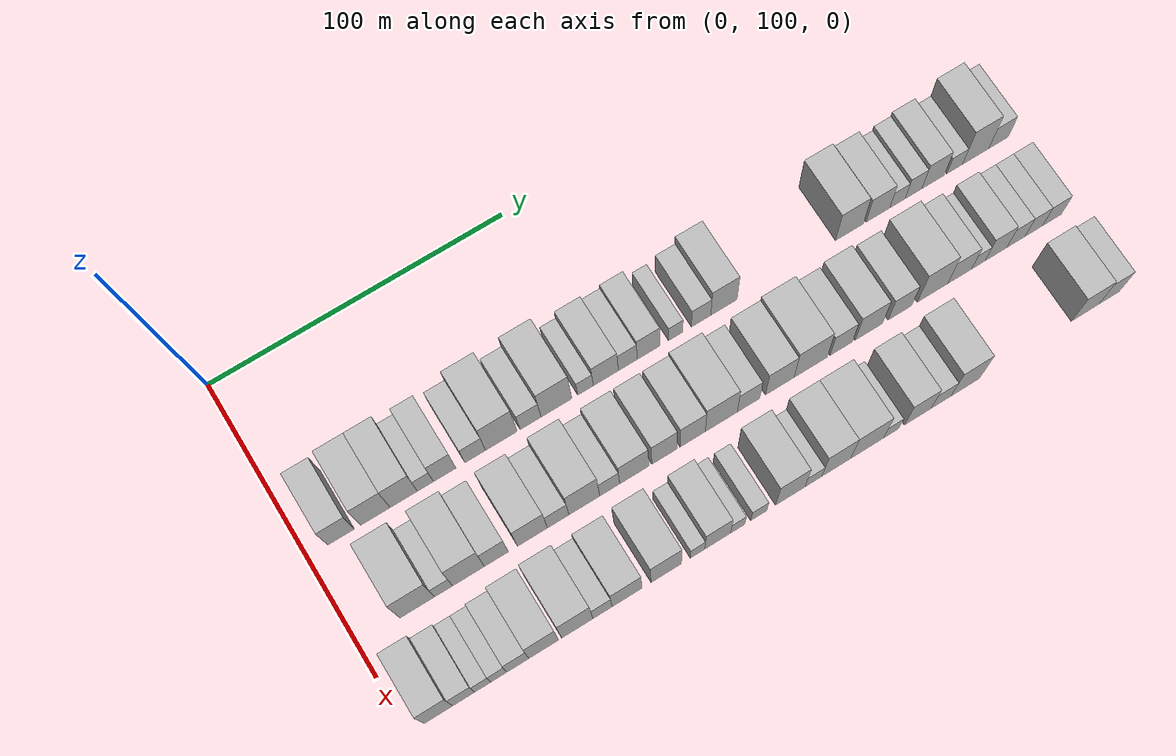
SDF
<sdf version="1.6">
 <world name="default">
  <model name="building_45">
   <static>1</static>
   <pose>50.0000 111.2178 0 0.000000 0.000000 0.000000</pose>
   <link name="link">
    <pose>0 0 9.00 0 0 0</pose>
    <collision name="collision"><geometry><box><size>20.0000 8.6720 18.0000</size></box></geometry></collision>
    <visual name="visual">
     <cast_shadows>0</cast_shadows>
     <geometry><box><size>20.0000 8.6720 18.0000</size></box></geometry>
     <material>
      <script>
       <uri>model://HANNAS_wall/materials/scripts</uri>
       <uri>model://HANNAS_wall/materials/textures</uri>
       <name>vrc/HANNAS_wall</name>
      </script>
     </material>
    </visual>
   </link>
  </model>
  <model name="building_46">
   <static>1</static>
   <pose>50.0000 122.4304 0 0.000000 0.000000 0.000000</pose>
   <link name="link">
    <pose>0 0 10.50 0 0 0</pose>
    <collision name="collision"><geometry><box><size>20.0000 9.7534 21.0000</size></box></geometry></collision>
    <visual name="visual">
     <cast_shadows>0</cast_shadows>
     <geometry><box><size>20.0000 9.7534 21.0000</size></box></geometry>
     <material>
      <script>
       <uri>model://HANNAS_wall/materials/scripts</uri>
       <uri>model://HANNAS_wall/materials/textures</uri>
       <name>vrc/HANNAS_wall</name>
      </script>
     </material>
    </visual>
   </link>
  </model>
  <model name="building_47">
   <static>1</static>
   <pose>50.0000 131.8109 0 0.000000 0.000000 0.000000</pose>
   <link name="link">
    <pose>0 0 10.50 0 0 0</pose>
    <collision name="collision"><geometry><box><size>20.0000 9.0077 21.0000</size></box></geometry></collision>
    <visual name="visual">
     <cast_shadows>0</cast_shadows>
     <geometry><box><size>20.0000 9.0077 21.0000</size></box></geometry>
     <material>
      <script>
       <uri>model://HANNAS_wall/materials/scripts</uri>
       <uri>model://HANNAS_wall/materials/textures</uri>
       <name>vrc/HANNAS_wall</name>
      </script>
     </material>
    </visual>
   </link>
  </model>
  <model name="building_48">
   <static>1</static>
   <pose>50.0000 138.9734 0 0.000000 0.000000 0.000000</pose>
   <link name="link">
    <pose>0 0 6.00 0 0 0</pose>
    <collision name="collision"><geometry><box><size>20.0000 5.3172 12.0000</size></box></geometry></collision>
    <visual name="visual">
     <cast_shadows>0</cast_shadows>
     <geometry><box><size>20.0000 5.3172 12.0000</size></box></geometry>
     <material>
      <script>
       <uri>model://HANNAS_wall/materials/scripts</uri>
       <uri>model://HANNAS_wall/materials/textures</uri>
       <name>vrc/HANNAS_wall</name>
      </script>
     </material>
    </visual>
   </link>
  </model>
  <model name="building_49">
   <static>1</static>
   <pose>50.0000 145.3596 0 0.000000 0.000000 0.000000</pose>
   <link name="link">
    <pose>0 0 9.00 0 0 0</pose>
    <collision name="collision"><geometry><box><size>20.0000 7.4552 18.0000</size></box></geometry></collision>
    <visual name="visual">
     <cast_shadows>0</cast_shadows>
     <geometry><box><size>20.0000 7.4552 18.0000</size></box></geometry>
     <material>
      <script>
       <uri>model://HANNAS_wall/materials/scripts</uri>
       <uri>model://HANNAS_wall/materials/textures</uri>
       <name>vrc/HANNAS_wall</name>
      </script>
     </material>
    </visual>
   </link>
  </model>
  <model name="building_50">
   <static>1</static>
   <pose>50.0000 155.5371 0 0.000000 0.000000 0.000000</pose>
   <link name="link">
    <pose>0 0 7.50 0 0 0</pose>
    <collision name="collision"><geometry><box><size>20.0000 6.8997 15.0000</size></box></geometry></collision>
    <visual name="visual">
     <cast_shadows>0</cast_shadows>
     <geometry><box><size>20.0000 6.8997 15.0000</size></box></geometry>
     <material>
      <script>
       <uri>model://HANNAS_wall/materials/scripts</uri>
       <uri>model://HANNAS_wall/materials/textures</uri>
       <name>vrc/HANNAS_wall</name>
      </script>
     </material>
    </visual>
   </link>
  </model>
  <model name="building_51">
   <static>1</static>
   <pose>50.0000 164.3028 0 0.000000 0.000000 0.000000</pose>
   <link name="link">
    <pose>0 0 12.00 0 0 0</pose>
    <collision name="collision"><geometry><box><size>20.0000 10.6318 24.0000</size></box></geometry></collision>
    <visual name="visual">
     <cast_shadows>0</cast_shadows>
     <geometry><box><size>20.0000 10.6318 24.0000</size></box></geometry>
     <material>
      <script>
       <uri>model://HANNAS_wall/materials/scripts</uri>
       <uri>model://HANNAS_wall/materials/textures</uri>
       <name>vrc/HANNAS_wall</name>
      </script>
     </material>
    </visual>
   </link>
  </model>
  <model name="building_52">
   <static>1</static>
   <pose>50.0000 174.1626 0 0.000000 0.000000 0.000000</pose>
   <link name="link">
    <pose>0 0 7.50 0 0 0</pose>
    <collision name="collision"><geometry><box><size>20.0000 7.0879 15.0000</size></box></geometry></collision>
    <visual name="visual">
     <cast_shadows>0</cast_shadows>
     <geometry><box><size>20.0000 7.0879 15.0000</size></box></geometry>
     <material>
      <script>
       <uri>model://HANNAS_wall/materials/scripts</uri>
       <uri>model://HANNAS_wall/materials/textures</uri>
       <name>vrc/HANNAS_wall</name>
      </script>
     </material>
    </visual>
   </link>
  </model>
  <model name="building_53">
   <static>1</static>
   <pose>50.0000 182.9408 0 0.000000 0.000000 0.000000</pose>
   <link name="link">
    <pose>0 0 12.00 0 0 0</pose>
    <collision name="collision"><geometry><box><size>20.0000 10.4686 24.0000</size></box></geometry></collision>
    <visual name="visual">
     <cast_shadows>0</cast_shadows>
     <geometry><box><size>20.0000 10.4686 24.0000</size></box></geometry>
     <material>
      <script>
       <uri>model://HANNAS_wall/materials/scripts</uri>
       <uri>model://HANNAS_wall/materials/textures</uri>
       <name>vrc/HANNAS_wall</name>
      </script>
     </material>
    </visual>
   </link>
  </model>
  <model name="building_54">
   <static>1</static>
   <pose>50.0000 192.8291 0 0.000000 0.000000 0.000000</pose>
   <link name="link">
    <pose>0 0 6.00 0 0 0</pose>
    <collision name="collision"><geometry><box><size>20.0000 5.3079 12.0000</size></box></geometry></collision>
    <visual name="visual">
     <cast_shadows>0</cast_shadows>
     <geometry><box><size>20.0000 5.3079 12.0000</size></box></geometry>
     <material>
      <script>
       <uri>model://HANNAS_wall/materials/scripts</uri>
       <uri>model://HANNAS_wall/materials/textures</uri>
       <name>vrc/HANNAS_wall</name>
      </script>
     </material>
    </visual>
   </link>
  </model>
  <model name="building_55">
   <static>1</static>
   <pose>50.0000 199.7881 0 0.000000 0.000000 0.000000</pose>
   <link name="link">
    <pose>0 0 9.00 0 0 0</pose>
    <collision name="collision"><geometry><box><size>20.0000 8.6101 18.0000</size></box></geometry></collision>
    <visual name="visual">
     <cast_shadows>0</cast_shadows>
     <geometry><box><size>20.0000 8.6101 18.0000</size></box></geometry>
     <material>
      <script>
       <uri>model://HANNAS_wall/materials/scripts</uri>
       <uri>model://HANNAS_wall/materials/textures</uri>
       <name>vrc/HANNAS_wall</name>
      </script>
     </material>
    </visual>
   </link>
  </model>
  <model name="building_56">
   <static>1</static>
   <pose>50.0000 207.3334 0 0.000000 0.000000 0.000000</pose>
   <link name="link">
    <pose>0 0 7.50 0 0 0</pose>
    <collision name="collision"><geometry><box><size>20.0000 6.4805 15.0000</size></box></geometry></collision>
    <visual name="visual">
     <cast_shadows>0</cast_shadows>
     <geometry><box><size>20.0000 6.4805 15.0000</size></box></geometry>
     <material>
      <script>
       <uri>model://HANNAS_wall/materials/scripts</uri>
       <uri>model://HANNAS_wall/materials/textures</uri>
       <name>vrc/HANNAS_wall</name>
      </script>
     </material>
    </visual>
   </link>
  </model>
  <model name="building_57">
   <static>1</static>
   <pose>50.0000 214.4789 0 0.000000 0.000000 0.000000</pose>
   <link name="link">
    <pose>0 0 9.00 0 0 0</pose>
    <collision name="collision"><geometry><box><size>20.0000 7.8107 18.0000</size></box></geometry></collision>
    <visual name="visual">
     <cast_shadows>0</cast_shadows>
     <geometry><box><size>20.0000 7.8107 18.0000</size></box></geometry>
     <material>
      <script>
       <uri>model://HANNAS_wall/materials/scripts</uri>
       <uri>model://HANNAS_wall/materials/textures</uri>
       <name>vrc/HANNAS_wall</name>
      </script>
     </material>
    </visual>
   </link>
  </model>
  <model name="building_58">
   <static>1</static>
   <pose>50.0000 223.8658 0 0.000000 0.000000 0.000000</pose>
   <link name="link">
    <pose>0 0 6.00 0 0 0</pose>
    <collision name="collision"><geometry><box><size>20.0000 4.9631 12.0000</size></box></geometry></collision>
    <visual name="visual">
     <cast_shadows>0</cast_shadows>
     <geometry><box><size>20.0000 4.9631 12.0000</size></box></geometry>
     <material>
      <script>
       <uri>model://HANNAS_wall/materials/scripts</uri>
       <uri>model://HANNAS_wall/materials/textures</uri>
       <name>vrc/HANNAS_wall</name>
      </script>
     </material>
    </visual>
   </link>
  </model>
  <model name="building_59">
   <static>1</static>
   <pose>50.0000 232.7346 0 0.000000 0.000000 0.000000</pose>
   <link name="link">
    <pose>0 0 7.50 0 0 0</pose>
    <collision name="collision"><geometry><box><size>20.0000 6.7745 15.0000</size></box></geometry></collision>
    <visual name="visual">
     <cast_shadows>0</cast_shadows>
     <geometry><box><size>20.0000 6.7745 15.0000</size></box></geometry>
     <material>
      <script>
       <uri>model://HANNAS_wall/materials/scripts</uri>
       <uri>model://HANNAS_wall/materials/textures</uri>
       <name>vrc/HANNAS_wall</name>
      </script>
     </material>
    </visual>
   </link>
  </model>
  <model name="building_60">
   <static>1</static>
   <pose>50.0000 240.7288 0 0.000000 0.000000 0.000000</pose>
   <link name="link">
    <pose>0 0 10.50 0 0 0</pose>
    <collision name="collision"><geometry><box><size>20.0000 9.2138 21.0000</size></box></geometry></collision>
    <visual name="visual">
     <cast_shadows>0</cast_shadows>
     <geometry><box><size>20.0000 9.2138 21.0000</size></box></geometry>
     <material>
      <script>
       <uri>model://HANNAS_wall/materials/scripts</uri>
       <uri>model://HANNAS_wall/materials/textures</uri>
       <name>vrc/HANNAS_wall</name>
      </script>
     </material>
    </visual>
   </link>
  </model>
  <model name="building_61">
   <static>1</static>
   <pose>50.0000 285.2702 0 0.000000 0.000000 0.000000</pose>
   <link name="link">
    <pose>0 0 10.50 0 0 0</pose>
    <collision name="collision"><geometry><box><size>20.0000 9.9563 21.0000</size></box></geometry></collision>
    <visual name="visual">
     <cast_shadows>0</cast_shadows>
     <geometry><box><size>20.0000 9.9563 21.0000</size></box></geometry>
     <material>
      <script>
       <uri>model://HANNAS_wall/materials/scripts</uri>
       <uri>model://HANNAS_wall/materials/textures</uri>
       <name>vrc/HANNAS_wall</name>
      </script>
     </material>
    </visual>
   </link>
  </model>
  <model name="building_62">
   <static>1</static>
   <pose>50.0000 295.5224 0 0.000000 0.000000 0.000000</pose>
   <link name="link">
    <pose>0 0 9.00 0 0 0</pose>
    <collision name="collision"><geometry><box><size>20.0000 8.5482 18.0000</size></box></geometry></collision>
    <visual name="visual">
     <cast_shadows>0</cast_shadows>
     <geometry><box><size>20.0000 8.5482 18.0000</size></box></geometry>
     <material>
      <script>
       <uri>model://HANNAS_wall/materials/scripts</uri>
       <uri>model://HANNAS_wall/materials/textures</uri>
       <name>vrc/HANNAS_wall</name>
      </script>
     </material>
    </visual>
   </link>
  </model>
  <model name="building_63">
   <static>1</static>
   <pose>50.0000 302.5892 0 0.000000 0.000000 0.000000</pose>
   <link name="link">
    <pose>0 0 6.00 0 0 0</pose>
    <collision name="collision"><geometry><box><size>20.0000 5.5853 12.0000</size></box></geometry></collision>
    <visual name="visual">
     <cast_shadows>0</cast_shadows>
     <geometry><box><size>20.0000 5.5853 12.0000</size></box></geometry>
     <material>
      <script>
       <uri>model://HANNAS_wall/materials/scripts</uri>
       <uri>model://HANNAS_wall/materials/textures</uri>
       <name>vrc/HANNAS_wall</name>
      </script>
     </material>
    </visual>
   </link>
  </model>
  <model name="building_64">
   <static>1</static>
   <pose>50.0000 308.4129 0 0.000000 0.000000 0.000000</pose>
   <link name="link">
    <pose>0 0 7.50 0 0 0</pose>
    <collision name="collision"><geometry><box><size>20.0000 6.0621 15.0000</size></box></geometry></collision>
    <visual name="visual">
     <cast_shadows>0</cast_shadows>
     <geometry><box><size>20.0000 6.0621 15.0000</size></box></geometry>
     <material>
      <script>
       <uri>model://HANNAS_wall/materials/scripts</uri>
       <uri>model://HANNAS_wall/materials/textures</uri>
       <name>vrc/HANNAS_wall</name>
      </script>
     </material>
    </visual>
   </link>
  </model>
  <model name="building_65">
   <static>1</static>
   <pose>50.0000 315.5067 0 0.000000 0.000000 0.000000</pose>
   <link name="link">
    <pose>0 0 9.00 0 0 0</pose>
    <collision name="collision"><geometry><box><size>20.0000 8.1256 18.0000</size></box></geometry></collision>
    <visual name="visual">
     <cast_shadows>0</cast_shadows>
     <geometry><box><size>20.0000 8.1256 18.0000</size></box></geometry>
     <material>
      <script>
       <uri>model://HANNAS_wall/materials/scripts</uri>
       <uri>model://HANNAS_wall/materials/textures</uri>
       <name>vrc/HANNAS_wall</name>
      </script>
     </material>
    </visual>
   </link>
  </model>
  <model name="building_66">
   <static>1</static>
   <pose>50.0000 323.4332 0 0.000000 0.000000 0.000000</pose>
   <link name="link">
    <pose>0 0 6.00 0 0 0</pose>
    <collision name="collision"><geometry><box><size>20.0000 5.7274 12.0000</size></box></geometry></collision>
    <visual name="visual">
     <cast_shadows>0</cast_shadows>
     <geometry><box><size>20.0000 5.7274 12.0000</size></box></geometry>
     <material>
      <script>
       <uri>model://HANNAS_wall/materials/scripts</uri>
       <uri>model://HANNAS_wall/materials/textures</uri>
       <name>vrc/HANNAS_wall</name>
      </script>
     </material>
    </visual>
   </link>
  </model>
  <model name="building_67">
   <static>1</static>
   <pose>50.0000 331.1289 0 0.000000 0.000000 0.000000</pose>
   <link name="link">
    <pose>0 0 12.00 0 0 0</pose>
    <collision name="collision"><geometry><box><size>20.0000 9.6640 24.0000</size></box></geometry></collision>
    <visual name="visual">
     <cast_shadows>0</cast_shadows>
     <geometry><box><size>20.0000 9.6640 24.0000</size></box></geometry>
     <material>
      <script>
       <uri>model://HANNAS_wall/materials/scripts</uri>
       <uri>model://HANNAS_wall/materials/textures</uri>
       <name>vrc/HANNAS_wall</name>
      </script>
     </material>
    </visual>
   </link>
  </model>
  <model name="building_68">
   <static>1</static>
   <pose>50.0000 339.5677 0 0.000000 0.000000 0.000000</pose>
   <link name="link">
    <pose>0 0 7.50 0 0 0</pose>
    <collision name="collision"><geometry><box><size>20.0000 7.2137 15.0000</size></box></geometry></collision>
    <visual name="visual">
     <cast_shadows>0</cast_shadows>
     <geometry><box><size>20.0000 7.2137 15.0000</size></box></geometry>
     <material>
      <script>
       <uri>model://HANNAS_wall/materials/scripts</uri>
       <uri>model://HANNAS_wall/materials/textures</uri>
       <name>vrc/HANNAS_wall</name>
      </script>
     </material>
    </visual>
   </link>
  </model>
  <model name="building_119">
   <static>1</static>
   <pose>79.0000 119.6316 0 0.000000 0.000000 0.000000</pose>
   <link name="link">
    <pose>0 0 12.00 0 0 0</pose>
    <collision name="collision"><geometry><box><size>20.0000 11.2546 24.0000</size></box></geometry></collision>
    <visual name="visual">
     <cast_shadows>0</cast_shadows>
     <geometry><box><size>20.0000 11.2546 24.0000</size></box></geometry>
     <material>
      <script>
       <uri>model://HANNAS_wall/materials/scripts</uri>
       <uri>model://HANNAS_wall/materials/textures</uri>
       <name>vrc/HANNAS_wall</name>
      </script>
     </material>
    </visual>
   </link>
  </model>
  <model name="building_120">
   <static>1</static>
   <pose>79.0000 128.2246 0 0.000000 0.000000 0.000000</pose>
   <link name="link">
    <pose>0 0 6.00 0 0 0</pose>
    <collision name="collision"><geometry><box><size>20.0000 5.9314 12.0000</size></box></geometry></collision>
    <visual name="visual">
     <cast_shadows>0</cast_shadows>
     <geometry><box><size>20.0000 5.9314 12.0000</size></box></geometry>
     <material>
      <script>
       <uri>model://HANNAS_wall/materials/scripts</uri>
       <uri>model://HANNAS_wall/materials/textures</uri>
       <name>vrc/HANNAS_wall</name>
      </script>
     </material>
    </visual>
   </link>
  </model>
  <model name="building_121">
   <static>1</static>
   <pose>79.0000 136.3945 0 0.000000 0.000000 0.000000</pose>
   <link name="link">
    <pose>0 0 12.00 0 0 0</pose>
    <collision name="collision"><geometry><box><size>20.0000 10.4083 24.0000</size></box></geometry></collision>
    <visual name="visual">
     <cast_shadows>0</cast_shadows>
     <geometry><box><size>20.0000 10.4083 24.0000</size></box></geometry>
     <material>
      <script>
       <uri>model://HANNAS_wall/materials/scripts</uri>
       <uri>model://HANNAS_wall/materials/textures</uri>
       <name>vrc/HANNAS_wall</name>
      </script>
     </material>
    </visual>
   </link>
  </model>
  <model name="building_122">
   <static>1</static>
   <pose>79.0000 145.5645 0 0.000000 0.000000 0.000000</pose>
   <link name="link">
    <pose>0 0 9.00 0 0 0</pose>
    <collision name="collision"><geometry><box><size>20.0000 7.9316 18.0000</size></box></geometry></collision>
    <visual name="visual">
     <cast_shadows>0</cast_shadows>
     <geometry><box><size>20.0000 7.9316 18.0000</size></box></geometry>
     <material>
      <script>
       <uri>model://HANNAS_wall/materials/scripts</uri>
       <uri>model://HANNAS_wall/materials/textures</uri>
       <name>vrc/HANNAS_wall</name>
      </script>
     </material>
    </visual>
   </link>
  </model>
  <model name="building_123">
   <static>1</static>
   <pose>79.0000 157.5036 0 0.000000 0.000000 0.000000</pose>
   <link name="link">
    <pose>0 0 10.50 0 0 0</pose>
    <collision name="collision"><geometry><box><size>20.0000 9.9468 21.0000</size></box></geometry></collision>
    <visual name="visual">
     <cast_shadows>0</cast_shadows>
     <geometry><box><size>20.0000 9.9468 21.0000</size></box></geometry>
     <material>
      <script>
       <uri>model://HANNAS_wall/materials/scripts</uri>
       <uri>model://HANNAS_wall/materials/textures</uri>
       <name>vrc/HANNAS_wall</name>
      </script>
     </material>
    </visual>
   </link>
  </model>
  <model name="building_124">
   <static>1</static>
   <pose>79.0000 166.0665 0 0.000000 0.000000 0.000000</pose>
   <link name="link">
    <pose>0 0 7.50 0 0 0</pose>
    <collision name="collision"><geometry><box><size>20.0000 7.1789 15.0000</size></box></geometry></collision>
    <visual name="visual">
     <cast_shadows>0</cast_shadows>
     <geometry><box><size>20.0000 7.1789 15.0000</size></box></geometry>
     <material>
      <script>
       <uri>model://HANNAS_wall/materials/scripts</uri>
       <uri>model://HANNAS_wall/materials/textures</uri>
       <name>vrc/HANNAS_wall</name>
      </script>
     </material>
    </visual>
   </link>
  </model>
  <model name="building_125">
   <static>1</static>
   <pose>79.0000 174.8131 0 0.000000 0.000000 0.000000</pose>
   <link name="link">
    <pose>0 0 12.00 0 0 0</pose>
    <collision name="collision"><geometry><box><size>20.0000 10.3144 24.0000</size></box></geometry></collision>
    <visual name="visual">
     <cast_shadows>0</cast_shadows>
     <geometry><box><size>20.0000 10.3144 24.0000</size></box></geometry>
     <material>
      <script>
       <uri>model://HANNAS_wall/materials/scripts</uri>
       <uri>model://HANNAS_wall/materials/textures</uri>
       <name>vrc/HANNAS_wall</name>
      </script>
     </material>
    </visual>
   </link>
  </model>
  <model name="building_126">
   <static>1</static>
   <pose>79.0000 183.3297 0 0.000000 0.000000 0.000000</pose>
   <link name="link">
    <pose>0 0 7.50 0 0 0</pose>
    <collision name="collision"><geometry><box><size>20.0000 6.7187 15.0000</size></box></geometry></collision>
    <visual name="visual">
     <cast_shadows>0</cast_shadows>
     <geometry><box><size>20.0000 6.7187 15.0000</size></box></geometry>
     <material>
      <script>
       <uri>model://HANNAS_wall/materials/scripts</uri>
       <uri>model://HANNAS_wall/materials/textures</uri>
       <name>vrc/HANNAS_wall</name>
      </script>
     </material>
    </visual>
   </link>
  </model>
  <model name="building_127">
   <static>1</static>
   <pose>79.0000 191.6260 0 0.000000 0.000000 0.000000</pose>
   <link name="link">
    <pose>0 0 10.50 0 0 0</pose>
    <collision name="collision"><geometry><box><size>20.0000 9.8740 21.0000</size></box></geometry></collision>
    <visual name="visual">
     <cast_shadows>0</cast_shadows>
     <geometry><box><size>20.0000 9.8740 21.0000</size></box></geometry>
     <material>
      <script>
       <uri>model://HANNAS_wall/materials/scripts</uri>
       <uri>model://HANNAS_wall/materials/textures</uri>
       <name>vrc/HANNAS_wall</name>
      </script>
     </material>
    </visual>
   </link>
  </model>
  <model name="building_128">
   <static>1</static>
   <pose>79.0000 201.8671 0 0.000000 0.000000 0.000000</pose>
   <link name="link">
    <pose>0 0 10.50 0 0 0</pose>
    <collision name="collision"><geometry><box><size>20.0000 8.6082 21.0000</size></box></geometry></collision>
    <visual name="visual">
     <cast_shadows>0</cast_shadows>
     <geometry><box><size>20.0000 8.6082 21.0000</size></box></geometry>
     <material>
      <script>
       <uri>model://HANNAS_wall/materials/scripts</uri>
       <uri>model://HANNAS_wall/materials/textures</uri>
       <name>vrc/HANNAS_wall</name>
      </script>
     </material>
    </visual>
   </link>
  </model>
  <model name="building_129">
   <static>1</static>
   <pose>79.0000 211.5063 0 0.000000 0.000000 0.000000</pose>
   <link name="link">
    <pose>0 0 10.50 0 0 0</pose>
    <collision name="collision"><geometry><box><size>20.0000 8.6703 21.0000</size></box></geometry></collision>
    <visual name="visual">
     <cast_shadows>0</cast_shadows>
     <geometry><box><size>20.0000 8.6703 21.0000</size></box></geometry>
     <material>
      <script>
       <uri>model://HANNAS_wall/materials/scripts</uri>
       <uri>model://HANNAS_wall/materials/textures</uri>
       <name>vrc/HANNAS_wall</name>
      </script>
     </material>
    </visual>
   </link>
  </model>
  <model name="building_130">
   <static>1</static>
   <pose>79.0000 221.3552 0 0.000000 0.000000 0.000000</pose>
   <link name="link">
    <pose>0 0 12.00 0 0 0</pose>
    <collision name="collision"><geometry><box><size>20.0000 11.0275 24.0000</size></box></geometry></collision>
    <visual name="visual">
     <cast_shadows>0</cast_shadows>
     <geometry><box><size>20.0000 11.0275 24.0000</size></box></geometry>
     <material>
      <script>
       <uri>model://HANNAS_wall/materials/scripts</uri>
       <uri>model://HANNAS_wall/materials/textures</uri>
       <name>vrc/HANNAS_wall</name>
      </script>
     </material>
    </visual>
   </link>
  </model>
  <model name="building_131">
   <static>1</static>
   <pose>79.0000 230.7373 0 0.000000 0.000000 0.000000</pose>
   <link name="link">
    <pose>0 0 9.00 0 0 0</pose>
    <collision name="collision"><geometry><box><size>20.0000 7.7367 18.0000</size></box></geometry></collision>
    <visual name="visual">
     <cast_shadows>0</cast_shadows>
     <geometry><box><size>20.0000 7.7367 18.0000</size></box></geometry>
     <material>
      <script>
       <uri>model://HANNAS_wall/materials/scripts</uri>
       <uri>model://HANNAS_wall/materials/textures</uri>
       <name>vrc/HANNAS_wall</name>
      </script>
     </material>
    </visual>
   </link>
  </model>
  <model name="building_132">
   <static>1</static>
   <pose>79.0000 241.5729 0 0.000000 0.000000 0.000000</pose>
   <link name="link">
    <pose>0 0 10.50 0 0 0</pose>
    <collision name="collision"><geometry><box><size>20.0000 9.9345 21.0000</size></box></geometry></collision>
    <visual name="visual">
     <cast_shadows>0</cast_shadows>
     <geometry><box><size>20.0000 9.9345 21.0000</size></box></geometry>
     <material>
      <script>
       <uri>model://HANNAS_wall/materials/scripts</uri>
       <uri>model://HANNAS_wall/materials/textures</uri>
       <name>vrc/HANNAS_wall</name>
      </script>
     </material>
    </visual>
   </link>
  </model>
  <model name="building_133">
   <static>1</static>
   <pose>79.0000 252.3539 0 0.000000 0.000000 0.000000</pose>
   <link name="link">
    <pose>0 0 12.00 0 0 0</pose>
    <collision name="collision"><geometry><box><size>20.0000 11.6275 24.0000</size></box></geometry></collision>
    <visual name="visual">
     <cast_shadows>0</cast_shadows>
     <geometry><box><size>20.0000 11.6275 24.0000</size></box></geometry>
     <material>
      <script>
       <uri>model://HANNAS_wall/materials/scripts</uri>
       <uri>model://HANNAS_wall/materials/textures</uri>
       <name>vrc/HANNAS_wall</name>
      </script>
     </material>
    </visual>
   </link>
  </model>
  <model name="building_134">
   <static>1</static>
   <pose>79.0000 263.0839 0 0.000000 0.000000 0.000000</pose>
   <link name="link">
    <pose>0 0 9.00 0 0 0</pose>
    <collision name="collision"><geometry><box><size>20.0000 7.8323 18.0000</size></box></geometry></collision>
    <visual name="visual">
     <cast_shadows>0</cast_shadows>
     <geometry><box><size>20.0000 7.8323 18.0000</size></box></geometry>
     <material>
      <script>
       <uri>model://HANNAS_wall/materials/scripts</uri>
       <uri>model://HANNAS_wall/materials/textures</uri>
       <name>vrc/HANNAS_wall</name>
      </script>
     </material>
    </visual>
   </link>
  </model>
  <model name="building_135">
   <static>1</static>
   <pose>79.0000 272.8400 0 0.000000 0.000000 0.000000</pose>
   <link name="link">
    <pose>0 0 10.50 0 0 0</pose>
    <collision name="collision"><geometry><box><size>20.0000 9.6799 21.0000</size></box></geometry></collision>
    <visual name="visual">
     <cast_shadows>0</cast_shadows>
     <geometry><box><size>20.0000 9.6799 21.0000</size></box></geometry>
     <material>
      <script>
       <uri>model://HANNAS_wall/materials/scripts</uri>
       <uri>model://HANNAS_wall/materials/textures</uri>
       <name>vrc/HANNAS_wall</name>
      </script>
     </material>
    </visual>
   </link>
  </model>
  <model name="building_136">
   <static>1</static>
   <pose>79.0000 283.8817 0 0.000000 0.000000 0.000000</pose>
   <link name="link">
    <pose>0 0 9.00 0 0 0</pose>
    <collision name="collision"><geometry><box><size>20.0000 8.4035 18.0000</size></box></geometry></collision>
    <visual name="visual">
     <cast_shadows>0</cast_shadows>
     <geometry><box><size>20.0000 8.4035 18.0000</size></box></geometry>
     <material>
      <script>
       <uri>model://HANNAS_wall/materials/scripts</uri>
       <uri>model://HANNAS_wall/materials/textures</uri>
       <name>vrc/HANNAS_wall</name>
      </script>
     </material>
    </visual>
   </link>
  </model>
  <model name="building_137">
   <static>1</static>
   <pose>79.0000 295.5110 0 0.000000 0.000000 0.000000</pose>
   <link name="link">
    <pose>0 0 12.00 0 0 0</pose>
    <collision name="collision"><geometry><box><size>20.0000 10.8550 24.0000</size></box></geometry></collision>
    <visual name="visual">
     <cast_shadows>0</cast_shadows>
     <geometry><box><size>20.0000 10.8550 24.0000</size></box></geometry>
     <material>
      <script>
       <uri>model://HANNAS_wall/materials/scripts</uri>
       <uri>model://HANNAS_wall/materials/textures</uri>
       <name>vrc/HANNAS_wall</name>
      </script>
     </material>
    </visual>
   </link>
  </model>
  <model name="building_138">
   <static>1</static>
   <pose>79.0000 305.2693 0 0.000000 0.000000 0.000000</pose>
   <link name="link">
    <pose>0 0 9.00 0 0 0</pose>
    <collision name="collision"><geometry><box><size>20.0000 8.6615 18.0000</size></box></geometry></collision>
    <visual name="visual">
     <cast_shadows>0</cast_shadows>
     <geometry><box><size>20.0000 8.6615 18.0000</size></box></geometry>
     <material>
      <script>
       <uri>model://HANNAS_wall/materials/scripts</uri>
       <uri>model://HANNAS_wall/materials/textures</uri>
       <name>vrc/HANNAS_wall</name>
      </script>
     </material>
    </visual>
   </link>
  </model>
  <model name="building_139">
   <static>1</static>
   <pose>79.0000 312.0457 0 0.000000 0.000000 0.000000</pose>
   <link name="link">
    <pose>0 0 6.00 0 0 0</pose>
    <collision name="collision"><geometry><box><size>20.0000 4.8913 12.0000</size></box></geometry></collision>
    <visual name="visual">
     <cast_shadows>0</cast_shadows>
     <geometry><box><size>20.0000 4.8913 12.0000</size></box></geometry>
     <material>
      <script>
       <uri>model://HANNAS_wall/materials/scripts</uri>
       <uri>model://HANNAS_wall/materials/textures</uri>
       <name>vrc/HANNAS_wall</name>
      </script>
     </material>
    </visual>
   </link>
  </model>
  <model name="building_140">
   <static>1</static>
   <pose>79.0000 318.4454 0 0.000000 0.000000 0.000000</pose>
   <link name="link">
    <pose>0 0 9.00 0 0 0</pose>
    <collision name="collision"><geometry><box><size>20.0000 7.9080 18.0000</size></box></geometry></collision>
    <visual name="visual">
     <cast_shadows>0</cast_shadows>
     <geometry><box><size>20.0000 7.9080 18.0000</size></box></geometry>
     <material>
      <script>
       <uri>model://HANNAS_wall/materials/scripts</uri>
       <uri>model://HANNAS_wall/materials/textures</uri>
       <name>vrc/HANNAS_wall</name>
      </script>
     </material>
    </visual>
   </link>
  </model>
  <model name="building_141">
   <static>1</static>
   <pose>79.0000 325.7124 0 0.000000 0.000000 0.000000</pose>
   <link name="link">
    <pose>0 0 7.50 0 0 0</pose>
    <collision name="collision"><geometry><box><size>20.0000 6.6260 15.0000</size></box></geometry></collision>
    <visual name="visual">
     <cast_shadows>0</cast_shadows>
     <geometry><box><size>20.0000 6.6260 15.0000</size></box></geometry>
     <material>
      <script>
       <uri>model://HANNAS_wall/materials/scripts</uri>
       <uri>model://HANNAS_wall/materials/textures</uri>
       <name>vrc/HANNAS_wall</name>
      </script>
     </material>
    </visual>
   </link>
  </model>
  <model name="building_142">
   <static>1</static>
   <pose>79.0000 332.2222 0 0.000000 0.000000 0.000000</pose>
   <link name="link">
    <pose>0 0 7.50 0 0 0</pose>
    <collision name="collision"><geometry><box><size>20.0000 6.3937 15.0000</size></box></geometry></collision>
    <visual name="visual">
     <cast_shadows>0</cast_shadows>
     <geometry><box><size>20.0000 6.3937 15.0000</size></box></geometry>
     <material>
      <script>
       <uri>model://HANNAS_wall/materials/scripts</uri>
       <uri>model://HANNAS_wall/materials/textures</uri>
       <name>vrc/HANNAS_wall</name>
      </script>
     </material>
    </visual>
   </link>
  </model>
  <model name="building_143">
   <static>1</static>
   <pose>79.0000 338.8728 0 0.000000 0.000000 0.000000</pose>
   <link name="link">
    <pose>0 0 7.50 0 0 0</pose>
    <collision name="collision"><geometry><box><size>20.0000 6.9075 15.0000</size></box></geometry></collision>
    <visual name="visual">
     <cast_shadows>0</cast_shadows>
     <geometry><box><size>20.0000 6.9075 15.0000</size></box></geometry>
     <material>
      <script>
       <uri>model://HANNAS_wall/materials/scripts</uri>
       <uri>model://HANNAS_wall/materials/textures</uri>
       <name>vrc/HANNAS_wall</name>
      </script>
     </material>
    </visual>
   </link>
  </model>
  <model name="building_194">
   <static>1</static>
   <pose>108.0000 109.8441 0 0.000000 0.000000 0.000000</pose>
   <link name="link">
    <pose>0 0 10.50 0 0 0</pose>
    <collision name="collision"><geometry><box><size>20.0000 9.1378 21.0000</size></box></geometry></collision>
    <visual name="visual">
     <cast_shadows>0</cast_shadows>
     <geometry><box><size>20.0000 9.1378 21.0000</size></box></geometry>
     <material>
      <script>
       <uri>model://HANNAS_wall/materials/scripts</uri>
       <uri>model://HANNAS_wall/materials/textures</uri>
       <name>vrc/HANNAS_wall</name>
      </script>
     </material>
    </visual>
   </link>
  </model>
  <model name="building_195">
   <static>1</static>
   <pose>108.0000 117.9497 0 0.000000 0.000000 0.000000</pose>
   <link name="link">
    <pose>0 0 7.50 0 0 0</pose>
    <collision name="collision"><geometry><box><size>20.0000 7.0734 15.0000</size></box></geometry></collision>
    <visual name="visual">
     <cast_shadows>0</cast_shadows>
     <geometry><box><size>20.0000 7.0734 15.0000</size></box></geometry>
     <material>
      <script>
       <uri>model://HANNAS_wall/materials/scripts</uri>
       <uri>model://HANNAS_wall/materials/textures</uri>
       <name>vrc/HANNAS_wall</name>
      </script>
     </material>
    </visual>
   </link>
  </model>
  <model name="building_196">
   <static>1</static>
   <pose>108.0000 124.0678 0 0.000000 0.000000 0.000000</pose>
   <link name="link">
    <pose>0 0 6.00 0 0 0</pose>
    <collision name="collision"><geometry><box><size>20.0000 5.1627 12.0000</size></box></geometry></collision>
    <visual name="visual">
     <cast_shadows>0</cast_shadows>
     <geometry><box><size>20.0000 5.1627 12.0000</size></box></geometry>
     <material>
      <script>
       <uri>model://HANNAS_wall/materials/scripts</uri>
       <uri>model://HANNAS_wall/materials/textures</uri>
       <name>vrc/HANNAS_wall</name>
      </script>
     </material>
    </visual>
   </link>
  </model>
  <model name="building_197">
   <static>1</static>
   <pose>108.0000 129.2578 0 0.000000 0.000000 0.000000</pose>
   <link name="link">
    <pose>0 0 6.00 0 0 0</pose>
    <collision name="collision"><geometry><box><size>20.0000 5.2172 12.0000</size></box></geometry></collision>
    <visual name="visual">
     <cast_shadows>0</cast_shadows>
     <geometry><box><size>20.0000 5.2172 12.0000</size></box></geometry>
     <material>
      <script>
       <uri>model://HANNAS_wall/materials/scripts</uri>
       <uri>model://HANNAS_wall/materials/textures</uri>
       <name>vrc/HANNAS_wall</name>
      </script>
     </material>
    </visual>
   </link>
  </model>
  <model name="building_198">
   <static>1</static>
   <pose>108.0000 135.4449 0 0.000000 0.000000 0.000000</pose>
   <link name="link">
    <pose>0 0 7.50 0 0 0</pose>
    <collision name="collision"><geometry><box><size>20.0000 7.1571 15.0000</size></box></geometry></collision>
    <visual name="visual">
     <cast_shadows>0</cast_shadows>
     <geometry><box><size>20.0000 7.1571 15.0000</size></box></geometry>
     <material>
      <script>
       <uri>model://HANNAS_wall/materials/scripts</uri>
       <uri>model://HANNAS_wall/materials/textures</uri>
       <name>vrc/HANNAS_wall</name>
      </script>
     </material>
    </visual>
   </link>
  </model>
  <model name="building_199">
   <static>1</static>
   <pose>108.0000 143.8693 0 0.000000 0.000000 0.000000</pose>
   <link name="link">
    <pose>0 0 10.50 0 0 0</pose>
    <collision name="collision"><geometry><box><size>20.0000 9.6915 21.0000</size></box></geometry></collision>
    <visual name="visual">
     <cast_shadows>0</cast_shadows>
     <geometry><box><size>20.0000 9.6915 21.0000</size></box></geometry>
     <material>
      <script>
       <uri>model://HANNAS_wall/materials/scripts</uri>
       <uri>model://HANNAS_wall/materials/textures</uri>
       <name>vrc/HANNAS_wall</name>
      </script>
     </material>
    </visual>
   </link>
  </model>
  <model name="building_200">
   <static>1</static>
   <pose>108.0000 154.8495 0 0.000000 0.000000 0.000000</pose>
   <link name="link">
    <pose>0 0 12.00 0 0 0</pose>
    <collision name="collision"><geometry><box><size>20.0000 10.2689 24.0000</size></box></geometry></collision>
    <visual name="visual">
     <cast_shadows>0</cast_shadows>
     <geometry><box><size>20.0000 10.2689 24.0000</size></box></geometry>
     <material>
      <script>
       <uri>model://HANNAS_wall/materials/scripts</uri>
       <uri>model://HANNAS_wall/materials/textures</uri>
       <name>vrc/HANNAS_wall</name>
      </script>
     </material>
    </visual>
   </link>
  </model>
  <model name="building_201">
   <static>1</static>
   <pose>108.0000 163.1710 0 0.000000 0.000000 0.000000</pose>
   <link name="link">
    <pose>0 0 7.50 0 0 0</pose>
    <collision name="collision"><geometry><box><size>20.0000 6.3743 15.0000</size></box></geometry></collision>
    <visual name="visual">
     <cast_shadows>0</cast_shadows>
     <geometry><box><size>20.0000 6.3743 15.0000</size></box></geometry>
     <material>
      <script>
       <uri>model://HANNAS_wall/materials/scripts</uri>
       <uri>model://HANNAS_wall/materials/textures</uri>
       <name>vrc/HANNAS_wall</name>
      </script>
     </material>
    </visual>
   </link>
  </model>
  <model name="building_202">
   <static>1</static>
   <pose>108.0000 171.3130 0 0.000000 0.000000 0.000000</pose>
   <link name="link">
    <pose>0 0 10.50 0 0 0</pose>
    <collision name="collision"><geometry><box><size>20.0000 9.9096 21.0000</size></box></geometry></collision>
    <visual name="visual">
     <cast_shadows>0</cast_shadows>
     <geometry><box><size>20.0000 9.9096 21.0000</size></box></geometry>
     <material>
      <script>
       <uri>model://HANNAS_wall/materials/scripts</uri>
       <uri>model://HANNAS_wall/materials/textures</uri>
       <name>vrc/HANNAS_wall</name>
      </script>
     </material>
    </visual>
   </link>
  </model>
  <model name="building_203">
   <static>1</static>
   <pose>108.0000 184.3371 0 0.000000 0.000000 0.000000</pose>
   <link name="link">
    <pose>0 0 12.00 0 0 0</pose>
    <collision name="collision"><geometry><box><size>20.0000 10.1388 24.0000</size></box></geometry></collision>
    <visual name="visual">
     <cast_shadows>0</cast_shadows>
     <geometry><box><size>20.0000 10.1388 24.0000</size></box></geometry>
     <material>
      <script>
       <uri>model://HANNAS_wall/materials/scripts</uri>
       <uri>model://HANNAS_wall/materials/textures</uri>
       <name>vrc/HANNAS_wall</name>
      </script>
     </material>
    </visual>
   </link>
  </model>
  <model name="building_204">
   <static>1</static>
   <pose>108.0000 194.8333 0 0.000000 0.000000 0.000000</pose>
   <link name="link">
    <pose>0 0 6.00 0 0 0</pose>
    <collision name="collision"><geometry><box><size>20.0000 4.8535 12.0000</size></box></geometry></collision>
    <visual name="visual">
     <cast_shadows>0</cast_shadows>
     <geometry><box><size>20.0000 4.8535 12.0000</size></box></geometry>
     <material>
      <script>
       <uri>model://HANNAS_wall/materials/scripts</uri>
       <uri>model://HANNAS_wall/materials/textures</uri>
       <name>vrc/HANNAS_wall</name>
      </script>
     </material>
    </visual>
   </link>
  </model>
  <model name="building_205">
   <static>1</static>
   <pose>108.0000 201.6304 0 0.000000 0.000000 0.000000</pose>
   <link name="link">
    <pose>0 0 10.50 0 0 0</pose>
    <collision name="collision"><geometry><box><size>20.0000 8.7407 21.0000</size></box></geometry></collision>
    <visual name="visual">
     <cast_shadows>0</cast_shadows>
     <geometry><box><size>20.0000 8.7407 21.0000</size></box></geometry>
     <material>
      <script>
       <uri>model://HANNAS_wall/materials/scripts</uri>
       <uri>model://HANNAS_wall/materials/textures</uri>
       <name>vrc/HANNAS_wall</name>
      </script>
     </material>
    </visual>
   </link>
  </model>
  <model name="building_206">
   <static>1</static>
   <pose>108.0000 208.4169 0 0.000000 0.000000 0.000000</pose>
   <link name="link">
    <pose>0 0 6.00 0 0 0</pose>
    <collision name="collision"><geometry><box><size>20.0000 4.8323 12.0000</size></box></geometry></collision>
    <visual name="visual">
     <cast_shadows>0</cast_shadows>
     <geometry><box><size>20.0000 4.8323 12.0000</size></box></geometry>
     <material>
      <script>
       <uri>model://HANNAS_wall/materials/scripts</uri>
       <uri>model://HANNAS_wall/materials/textures</uri>
       <name>vrc/HANNAS_wall</name>
      </script>
     </material>
    </visual>
   </link>
  </model>
  <model name="building_207">
   <static>1</static>
   <pose>108.0000 215.5633 0 0.000000 0.000000 0.000000</pose>
   <link name="link">
    <pose>0 0 6.00 0 0 0</pose>
    <collision name="collision"><geometry><box><size>20.0000 5.4606 12.0000</size></box></geometry></collision>
    <visual name="visual">
     <cast_shadows>0</cast_shadows>
     <geometry><box><size>20.0000 5.4606 12.0000</size></box></geometry>
     <material>
      <script>
       <uri>model://HANNAS_wall/materials/scripts</uri>
       <uri>model://HANNAS_wall/materials/textures</uri>
       <name>vrc/HANNAS_wall</name>
      </script>
     </material>
    </visual>
   </link>
  </model>
  <model name="building_208">
   <static>1</static>
   <pose>108.0000 226.2933 0 0.000000 0.000000 0.000000</pose>
   <link name="link">
    <pose>0 0 12.00 0 0 0</pose>
    <collision name="collision"><geometry><box><size>20.0000 9.9995 24.0000</size></box></geometry></collision>
    <visual name="visual">
     <cast_shadows>0</cast_shadows>
     <geometry><box><size>20.0000 9.9995 24.0000</size></box></geometry>
     <material>
      <script>
       <uri>model://HANNAS_wall/materials/scripts</uri>
       <uri>model://HANNAS_wall/materials/textures</uri>
       <name>vrc/HANNAS_wall</name>
      </script>
     </material>
    </visual>
   </link>
  </model>
  <model name="building_209">
   <static>1</static>
   <pose>108.0000 234.2068 0 0.000000 0.000000 0.000000</pose>
   <link name="link">
    <pose>0 0 6.00 0 0 0</pose>
    <collision name="collision"><geometry><box><size>20.0000 5.8274 12.0000</size></box></geometry></collision>
    <visual name="visual">
     <cast_shadows>0</cast_shadows>
     <geometry><box><size>20.0000 5.8274 12.0000</size></box></geometry>
     <material>
      <script>
       <uri>model://HANNAS_wall/materials/scripts</uri>
       <uri>model://HANNAS_wall/materials/textures</uri>
       <name>vrc/HANNAS_wall</name>
      </script>
     </material>
    </visual>
   </link>
  </model>
  <model name="building_210">
   <static>1</static>
   <pose>108.0000 242.1443 0 0.000000 0.000000 0.000000</pose>
   <link name="link">
    <pose>0 0 12.00 0 0 0</pose>
    <collision name="collision"><geometry><box><size>20.0000 10.0476 24.0000</size></box></geometry></collision>
    <visual name="visual">
     <cast_shadows>0</cast_shadows>
     <geometry><box><size>20.0000 10.0476 24.0000</size></box></geometry>
     <material>
      <script>
       <uri>model://HANNAS_wall/materials/scripts</uri>
       <uri>model://HANNAS_wall/materials/textures</uri>
       <name>vrc/HANNAS_wall</name>
      </script>
     </material>
    </visual>
   </link>
  </model>
  <model name="building_211">
   <static>1</static>
   <pose>108.0000 252.8616 0 0.000000 0.000000 0.000000</pose>
   <link name="link">
    <pose>0 0 12.00 0 0 0</pose>
    <collision name="collision"><geometry><box><size>20.0000 11.3869 24.0000</size></box></geometry></collision>
    <visual name="visual">
     <cast_shadows>0</cast_shadows>
     <geometry><box><size>20.0000 11.3869 24.0000</size></box></geometry>
     <material>
      <script>
       <uri>model://HANNAS_wall/materials/scripts</uri>
       <uri>model://HANNAS_wall/materials/textures</uri>
       <name>vrc/HANNAS_wall</name>
      </script>
     </material>
    </visual>
   </link>
  </model>
  <model name="building_212">
   <static>1</static>
   <pose>108.0000 261.1997 0 0.000000 0.000000 0.000000</pose>
   <link name="link">
    <pose>0 0 6.00 0 0 0</pose>
    <collision name="collision"><geometry><box><size>20.0000 5.2895 12.0000</size></box></geometry></collision>
    <visual name="visual">
     <cast_shadows>0</cast_shadows>
     <geometry><box><size>20.0000 5.2895 12.0000</size></box></geometry>
     <material>
      <script>
       <uri>model://HANNAS_wall/materials/scripts</uri>
       <uri>model://HANNAS_wall/materials/textures</uri>
       <name>vrc/HANNAS_wall</name>
      </script>
     </material>
    </visual>
   </link>
  </model>
  <model name="building_213">
   <static>1</static>
   <pose>108.0000 270.4988 0 0.000000 0.000000 0.000000</pose>
   <link name="link">
    <pose>0 0 10.50 0 0 0</pose>
    <collision name="collision"><geometry><box><size>20.0000 9.3087 21.0000</size></box></geometry></collision>
    <visual name="visual">
     <cast_shadows>0</cast_shadows>
     <geometry><box><size>20.0000 9.3087 21.0000</size></box></geometry>
     <material>
      <script>
       <uri>model://HANNAS_wall/materials/scripts</uri>
       <uri>model://HANNAS_wall/materials/textures</uri>
       <name>vrc/HANNAS_wall</name>
      </script>
     </material>
    </visual>
   </link>
  </model>
  <model name="building_214">
   <static>1</static>
   <pose>108.0000 278.6515 0 0.000000 0.000000 0.000000</pose>
   <link name="link">
    <pose>0 0 7.50 0 0 0</pose>
    <collision name="collision"><geometry><box><size>20.0000 6.9967 15.0000</size></box></geometry></collision>
    <visual name="visual">
     <cast_shadows>0</cast_shadows>
     <geometry><box><size>20.0000 6.9967 15.0000</size></box></geometry>
     <material>
      <script>
       <uri>model://HANNAS_wall/materials/scripts</uri>
       <uri>model://HANNAS_wall/materials/textures</uri>
       <name>vrc/HANNAS_wall</name>
      </script>
     </material>
    </visual>
   </link>
  </model>
  <model name="building_215">
   <static>1</static>
   <pose>108.0000 287.2674 0 0.000000 0.000000 0.000000</pose>
   <link name="link">
    <pose>0 0 12.00 0 0 0</pose>
    <collision name="collision"><geometry><box><size>20.0000 10.2350 24.0000</size></box></geometry></collision>
    <visual name="visual">
     <cast_shadows>0</cast_shadows>
     <geometry><box><size>20.0000 10.2350 24.0000</size></box></geometry>
     <material>
      <script>
       <uri>model://HANNAS_wall/materials/scripts</uri>
       <uri>model://HANNAS_wall/materials/textures</uri>
       <name>vrc/HANNAS_wall</name>
      </script>
     </material>
    </visual>
   </link>
  </model>
  <model name="building_216">
   <static>1</static>
   <pose>108.0000 330.3159 0 0.000000 0.000000 0.000000</pose>
   <link name="link">
    <pose>0 0 10.50 0 0 0</pose>
    <collision name="collision"><geometry><box><size>20.0000 9.9540 21.0000</size></box></geometry></collision>
    <visual name="visual">
     <cast_shadows>0</cast_shadows>
     <geometry><box><size>20.0000 9.9540 21.0000</size></box></geometry>
     <material>
      <script>
       <uri>model://HANNAS_wall/materials/scripts</uri>
       <uri>model://HANNAS_wall/materials/textures</uri>
       <name>vrc/HANNAS_wall</name>
      </script>
     </material>
    </visual>
   </link>
  </model>
  <model name="building_217">
   <static>1</static>
   <pose>108.0000 339.0454 0 0.000000 0.000000 0.000000</pose>
   <link name="link">
    <pose>0 0 9.00 0 0 0</pose>
    <collision name="collision"><geometry><box><size>20.0000 7.5049 18.0000</size></box></geometry></collision>
    <visual name="visual">
     <cast_shadows>0</cast_shadows>
     <geometry><box><size>20.0000 7.5049 18.0000</size></box></geometry>
     <material>
      <script>
       <uri>model://HANNAS_wall/materials/scripts</uri>
       <uri>model://HANNAS_wall/materials/textures</uri>
       <name>vrc/HANNAS_wall</name>
      </script>
     </material>
    </visual>
   </link>
  </model>
 </world>
</sdf>
